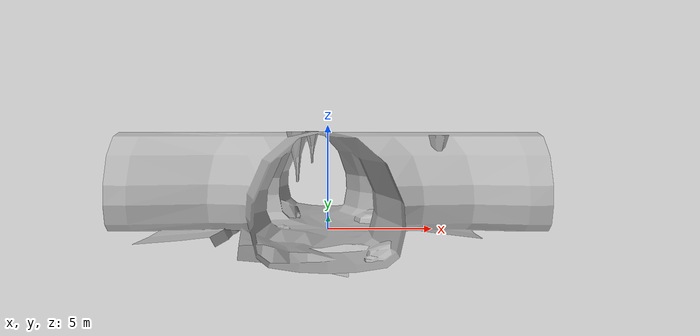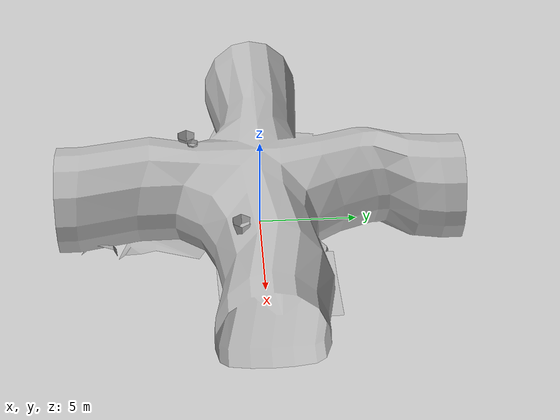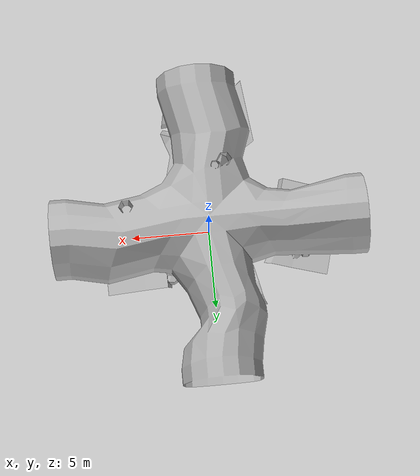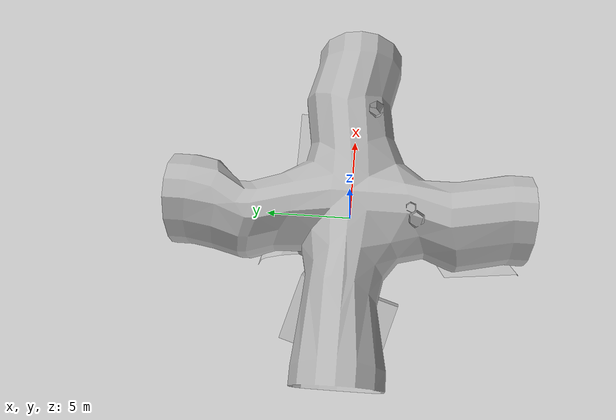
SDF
<?xml version="1.0" ?>
<sdf version="1.6">
  <model name="cave_tile_3">
    <static>true</static>
    <link name="link">
      <collision name="collision">
        <geometry>
          <mesh>
            <uri>model://cave_tile_3/meshes/cave_tile_3.dae</uri>
          </mesh>
        </geometry>
      </collision>
      <visual name="visual">
        <geometry>
          <mesh>
            <uri>model://cave_tile_3/meshes/cave_tile_3.dae</uri>
          </mesh>
        </geometry>
      </visual>
    </link>
  </model>
</sdf>
